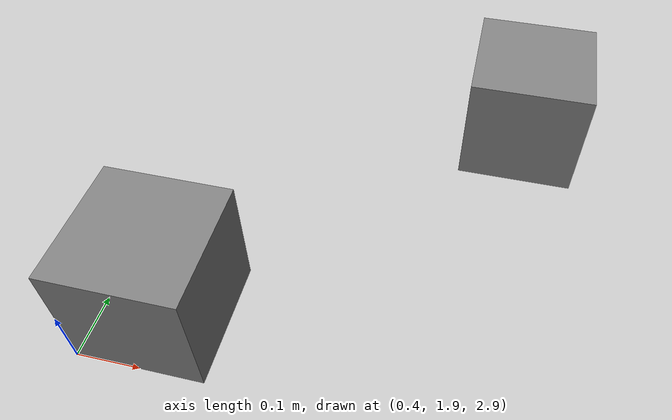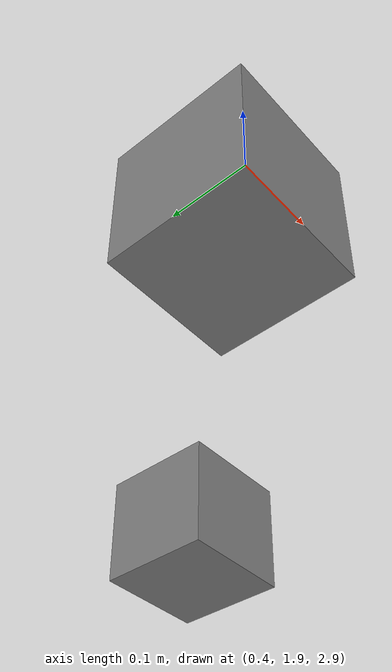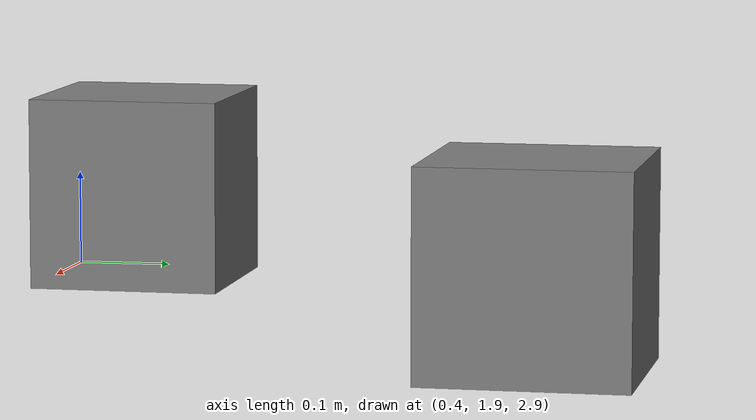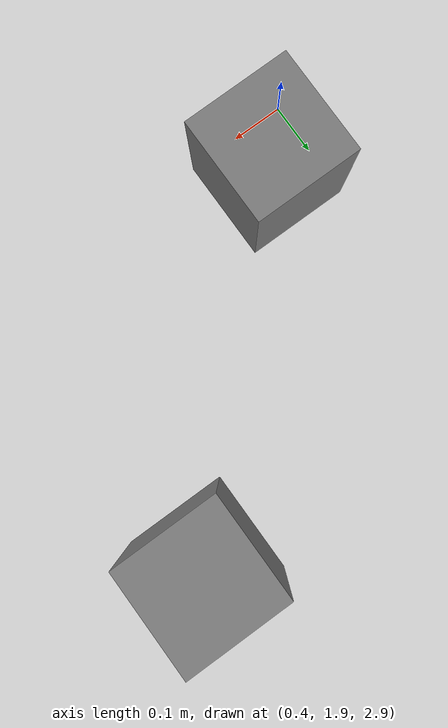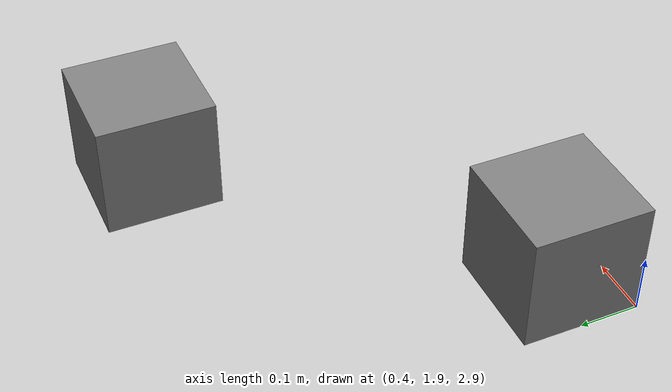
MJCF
<mujoco>
  <worldbody>
    <body name="base">
      <frame pos="1 2 3" quat="0.7071068 0 0 0.7071068">
        <geom type="box" size="0.1 0.1 0.1" pos="0.5 0 0"/>
        <body name="shelf" pos="0.5 0 0">
          <geom type="box" size="0.1 0.1 0.1"/>
        </body>
        <body name="door" pos="0 0.5 0">
          <joint name="door_hinge" type="hinge" axis="0 0 1" range="-1.57 0"/>
          <geom type="box" size="0.1 0.1 0.1"/>
        </body>
      </frame>
    </body>
  </worldbody>
</mujoco>
